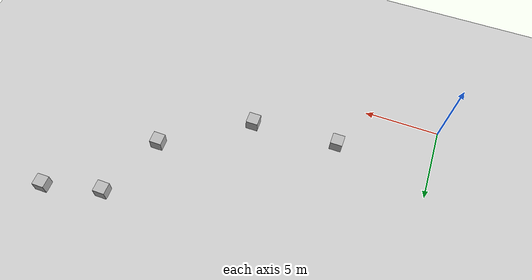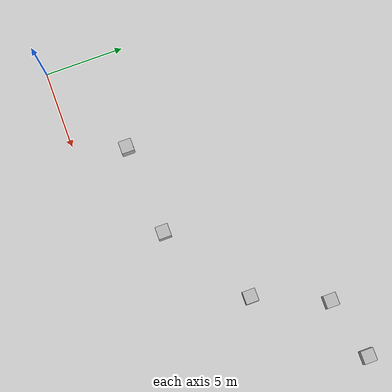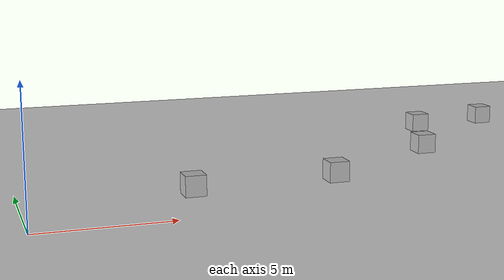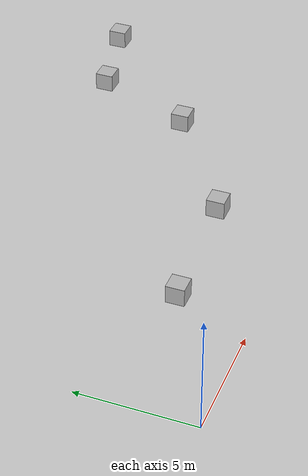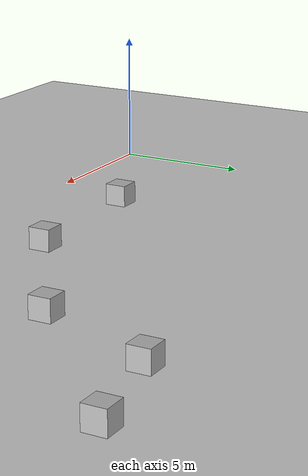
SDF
<sdf version="1.6">
 <world name="default">
  <model name="ground_plane">
   <static>1</static>
   <link name="link">
    <collision name="collision">
     <geometry><plane><normal>0 0 1</normal><size>100 100</size></plane></geometry>
     <surface><friction><ode><mu>100</mu><mu2>50</mu2></ode></friction></surface>
    </collision>
    <visual name="visual">
     <cast_shadows>0</cast_shadows>
     <geometry><plane><normal>0 0 1</normal><size>100 100</size></plane></geometry>
     <material>
      <script><uri>file://media/materials/scripts/gazebo.material</uri><name>Gazebo/Grey</name></script>
     </material>
    </visual>
   </link>
  </model>
  <light name="sun" type="directional">
   <pose>0 0 10 0 -0 0</pose>
   <diffuse>0.8 0.8 0.8 1</diffuse>
   <specular>0.1 0.1 0.1 1</specular>
   <attenuation>
    <range>1000</range>
    <constant>0.9</constant>
    <linear>0.01</linear>
    <quadratic>0.001</quadratic>
   </attenuation>
   <direction>-0.5 0.5 -1</direction>
  </light>
  <plugin name="ros_interface_plugin" filename="librotors_gazebo_ros_interface_plugin.so"/>
  <spherical_coordinates>
   <surface_model>EARTH_WGS84</surface_model>
   <latitude_deg>47.3667</latitude_deg>
   <longitude_deg>8.55</longitude_deg>
   <elevation>500</elevation>
   <heading_deg>0</heading_deg>
  </spherical_coordinates>
  <physics name="default_physics" default="0" type="ode">
   <ode>
    <solver>
     <type>quick</type>
     <iters>1000</iters>
     <sor>1.3</sor>
     <use_dynamic_moi_rescaling>0</use_dynamic_moi_rescaling>
    </solver>
    <constraints>
     <cfm>0</cfm>
     <erp>0.2</erp>
     <contact_max_correcting_vel>100</contact_max_correcting_vel>
     <contact_surface_layer>0.001</contact_surface_layer>
    </constraints>
   </ode>
   <max_step_size>0.01</max_step_size>
   <real_time_factor>1</real_time_factor>
   <real_time_update_rate>100</real_time_update_rate>
  </physics>
  <gravity>0 0 -9.8</gravity>
  <magnetic_field>6e-06 2.3e-05 -4.2e-05</magnetic_field>
  <atmosphere type="adiabatic"/>
  <scene><ambient>0.4 0.4 0.4 1</ambient><background>0.7 0.7 0.7 1</background><shadows>1</shadows></scene>
  <model name="number1">
   <pose>6.28436 3.20094 0.4 0 -0 0</pose>
   <static>1</static>
   <link name="link">
    <visual name="visual">
     <geometry><mesh><uri>model://number1/meshes/number.dae</uri><scale>1 1 1</scale></mesh></geometry>
     <material>
      <script>
       <uri>model://number1/materials/scripts</uri>
       <uri>model://number1/materials/textures</uri>
       <name>Number/One</name>
      </script>
     </material>
    </visual>
   </link>
  </model>
  <model name="number2">
   <pose>12.0567 3.56296 0.4 0 -0 0</pose>
   <static>1</static>
   <link name="link">
    <visual name="visual">
     <geometry><mesh><uri>model://number1/meshes/number.dae</uri><scale>1 1 1</scale></mesh></geometry>
     <material>
      <script>
       <uri>model://number2/materials/scripts</uri>
       <uri>model://number2/materials/textures</uri>
       <name>Number/Two</name>
      </script>
     </material>
    </visual>
   </link>
  </model>
  <model name="number3">
   <pose>17.5357 7.16898 0.4 0 -0 0</pose>
   <static>1</static>
   <link name="link">
    <visual name="visual">
     <geometry><mesh><uri>model://number1/meshes/number.dae</uri><scale>1 1 1</scale></mesh></geometry>
     <material>
      <script>
       <uri>model://number3/materials/scripts</uri>
       <uri>model://number3/materials/textures</uri>
       <name>Number/Three</name>
      </script>
     </material>
    </visual>
   </link>
  </model>
  <model name="number4">
   <pose>19.4145 11.6313 0.4 0 -0 0</pose>
   <static>1</static>
   <link name="link">
    <visual name="visual">
     <geometry><mesh><uri>model://number1/meshes/number.dae</uri><scale>1 1 1</scale></mesh></geometry>
     <material>
      <script>
       <uri>model://number4/materials/scripts</uri>
       <uri>model://number4/materials/textures</uri>
       <name>Number/Four</name>
      </script>
     </material>
    </visual>
   </link>
  </model>
  <model name="number5">
   <pose>23.2342 12.5241 0.4 0 -0 0</pose>
   <static>1</static>
   <link name="link">
    <visual name="visual">
     <geometry><mesh><uri>model://number1/meshes/number.dae</uri><scale>1 1 1</scale></mesh></geometry>
     <material>
      <script>
       <uri>model://number5/materials/scripts</uri>
       <uri>model://number5/materials/textures</uri>
       <name>Number/Five</name>
      </script>
     </material>
    </visual>
   </link>
  </model>
 </world>
</sdf>
